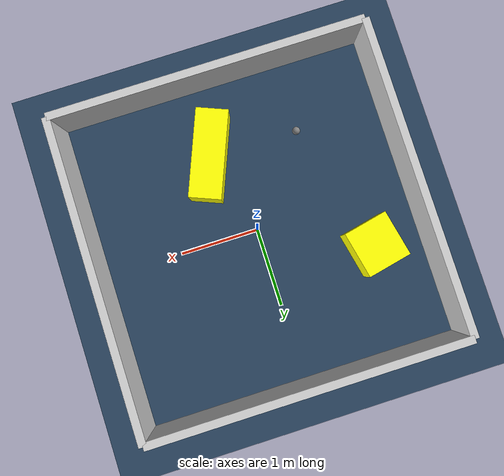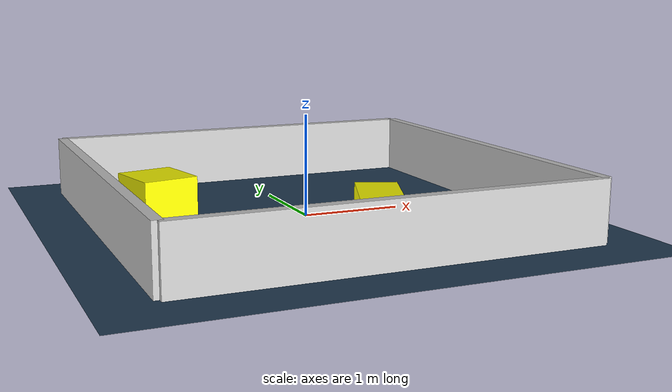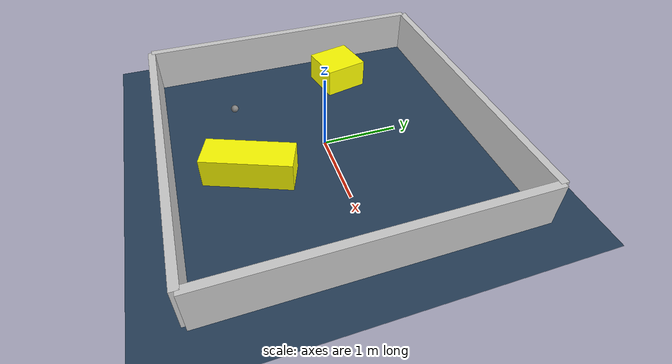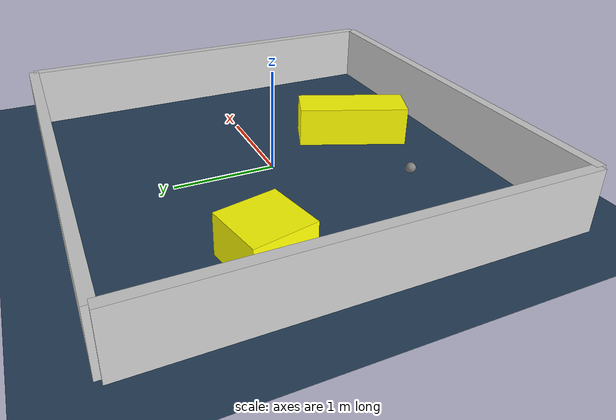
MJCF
<?xml version="1.0" ?>
<mujoco model="generated_environment">
  <option timestep="0.01" integrator="RK4" cone="elliptic"/>
  <default>
    <geom density="1"/>
  </default>
  <asset>
    <texture builtin="gradient" height="3072" rgb1="0.3 0.5 0.7" rgb2="0 0 0" type="skybox" width="512"/>
    <texture builtin="checker" height="300" mark="edge" markrgb="0.8 0.8 0.8" name="groundplane" rgb1="0.2 0.3 0.4" rgb2="0.1 0.2 0.3" type="2d" width="300"/>
    <material name="groundplane" reflectance="0.2" texrepeat="5 5" texture="groundplane" texuniform="true"/>
    <material name="robot" rgba="0.0 1.0 0.0 1"/>
  </asset>
  <worldbody>
    <light dir="0 0 -1" directional="true" pos="0 0 1.5"/>
    <geom condim="4" friction="1.0 0.005 0.001" material="groundplane" name="floor" size="0 0 0.05" type="plane"/>
    <body name="walls">
      <geom name="wall_1" condim="4" pos="-2.0 0.0 0.3" rgba="0.800000011920929 0.800000011920929 0.800000011920929 1.0" size="0.05 2.0 0.3" type="box"/>
      <geom name="wall_2" condim="4" pos="2.0 0.0 0.3" rgba="0.800000011920929 0.800000011920929 0.800000011920929 1.0" size="0.05 2.0 0.3" type="box"/>
      <geom name="wall_3" condim="4" pos="0.0 -2.0 0.3" rgba="0.800000011920929 0.800000011920929 0.800000011920929 1.0" size="2.0 0.05 0.3" type="box"/>
      <geom name="wall_4" condim="4" pos="0.0 2.0 0.3" rgba="0.800000011920929 0.800000011920929 0.800000011920929 1.0" size="2.0 0.05 0.3" type="box"/>
    </body>
    <body name="robot">
      <joint name="joint_x" type="slide" pos="0 0 0" axis="1 0 0"/>
      <joint name="joint_y" type="slide" pos="0 0 0" axis="0 1 0"/>
      <geom name="robot" type="sphere" pos="-0.8423638591758216 -1.0304268843763422 0.2" size="0.05" mass="5." friction="1.0 0.005 0.0001" condim="4"/>
      <site name="sensor_ball"/>
    </body>
    <body name="obstacle_1_movable">
      <geom name="obstacle_1_movable" condim="4" pos="0.2891431773647912 -1.0481385976250788 0.2" euler="0 0 248.04137278423258" friction="1.0 0.005 0.001" rgba="1 1 0 1" size="0.5570286796363446 0.2026703070479269 0.2" type="box" mass="0.1"/>
      <joint type="free"/>
    </body>
    <body name="obstacle_2_movable">
      <geom name="obstacle_2_movable" condim="4" pos="-1.3207052821486107 0.6285935192329375 0.2" euler="0 0 12.235798342030343" friction="1.0 0.005 0.001" rgba="1 1 0 1" size="0.2820453245185535 0.29690099122426267 0.2" type="box" mass="0.1"/>
      <joint type="free"/>
    </body>
  </worldbody>
  <actuator>
    <motor name="actuator_x" joint="joint_x" gear="1" ctrlrange="-1 1"/>
    <motor name="actuator_y" joint="joint_y" gear="1" ctrlrange="-1 1"/>
  </actuator>
</mujoco>
